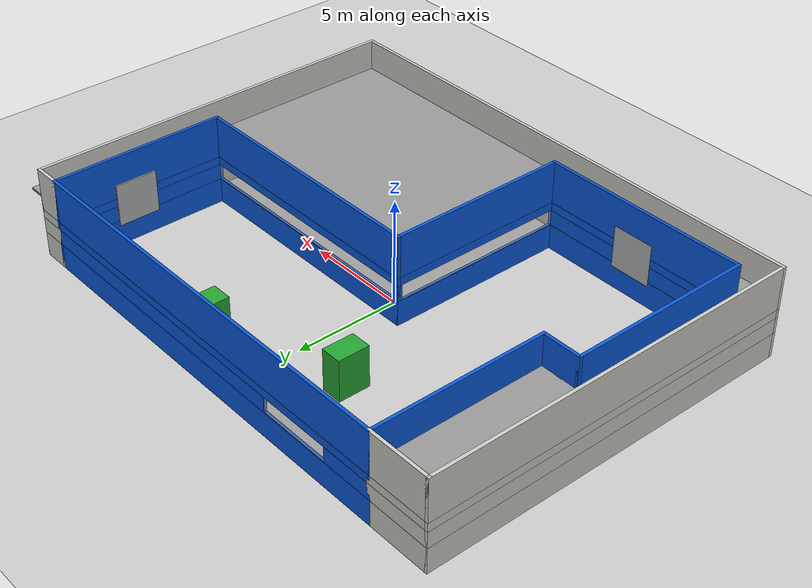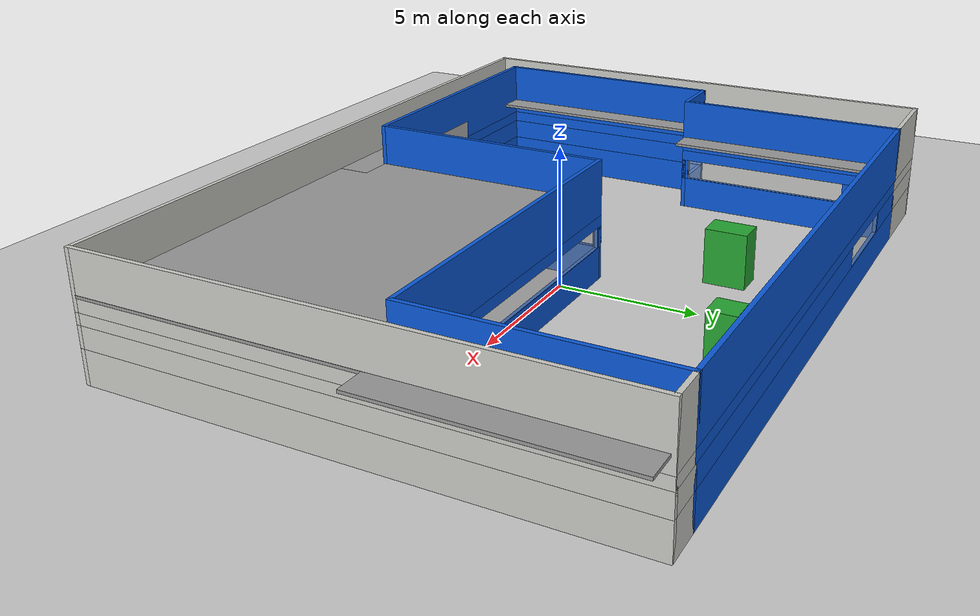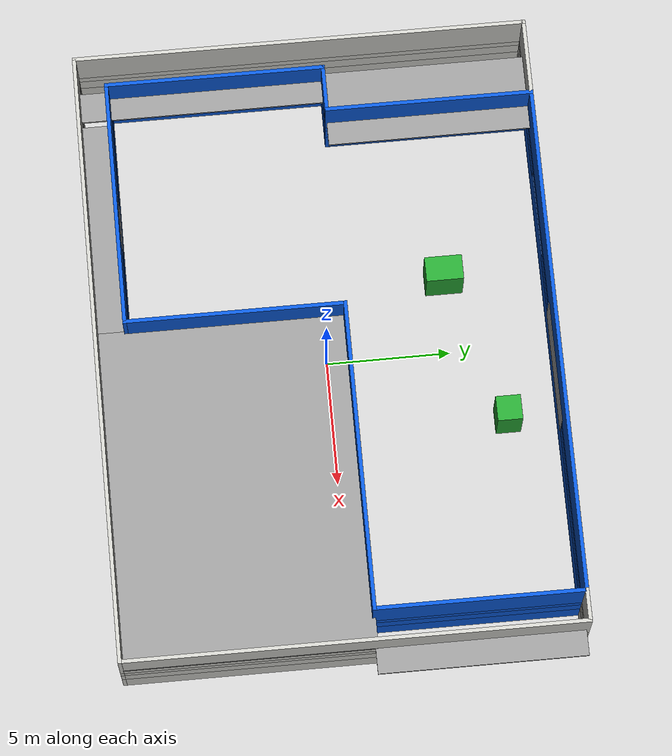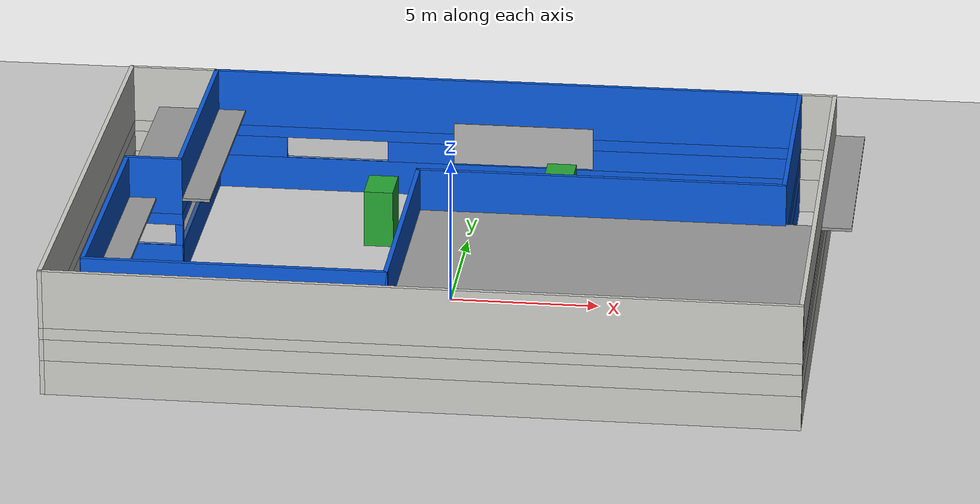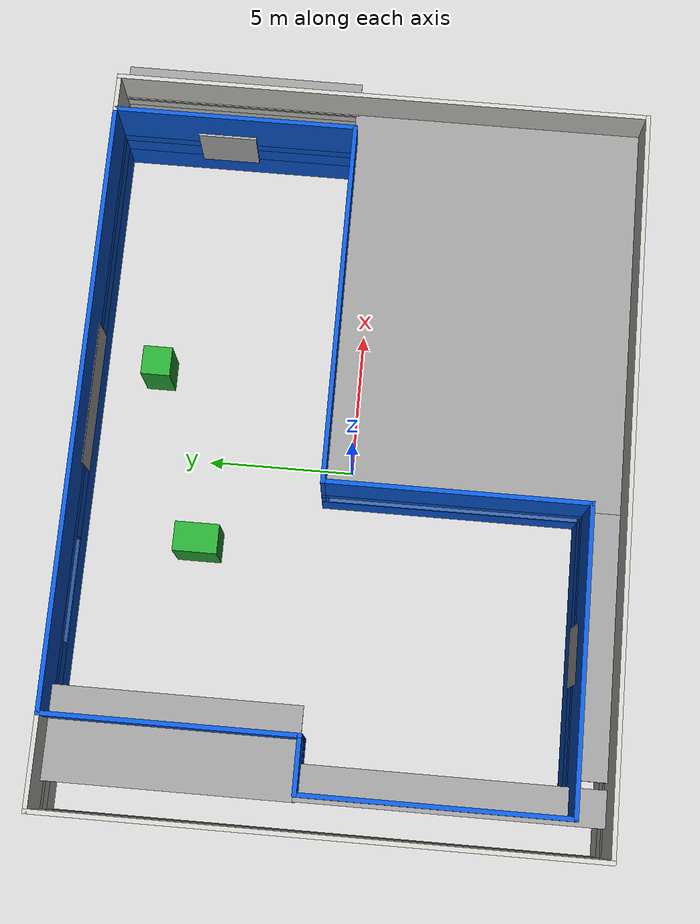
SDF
<sdf version="1.6">
 <world name="default">
  <light name="sun" type="directional">
   <pose>0 0 10 0 -0 0</pose>
   <diffuse>0.8 0.8 0.8 1</diffuse>
   <specular>0.1 0.1 0.1 1</specular>
   <attenuation>
    <range>1000</range>
    <constant>0.9</constant>
    <linear>0.01</linear>
    <quadratic>0.001</quadratic>
   </attenuation>
   <direction>-0.5 0.5 -1</direction>
  </light>
  <model name="ground_plane">
   <static>1</static>
   <link name="link">
    <collision name="collision">
     <geometry><plane><normal>0 0 1</normal><size>100 100</size></plane></geometry>
     <surface><friction><ode><mu>100</mu><mu2>50</mu2></ode></friction></surface>
    </collision>
    <visual name="visual">
     <cast_shadows>0</cast_shadows>
     <geometry><plane><normal>0 0 1</normal><size>100 100</size></plane></geometry>
     <material>
      <script><uri>file://media/materials/scripts/gazebo.material</uri><name>Gazebo/Grey</name></script>
     </material>
    </visual>
   </link>
  </model>
  <gravity>0 0 -9.8</gravity>
  <magnetic_field>6e-06 2.3e-05 -4.2e-05</magnetic_field>
  <atmosphere type="adiabatic"/>
  <physics name="default_physics" default="0" type="ode">
   <max_step_size>0.001</max_step_size>
   <real_time_factor>1</real_time_factor>
   <real_time_update_rate>1000</real_time_update_rate>
   <ode>
    <solver>
     <thread_position_correction>1</thread_position_correction>
     <island_threads>500</island_threads>
    </solver>
   </ode>
  </physics>
  <scene><ambient>0.4 0.4 0.4 1</ambient><background>0.7 0.7 0.7 1</background><shadows>0</shadows></scene>
  <spherical_coordinates>
   <surface_model>EARTH_WGS84</surface_model>
   <latitude_deg>0</latitude_deg>
   <longitude_deg>0</longitude_deg>
   <elevation>0</elevation>
   <heading_deg>0</heading_deg>
  </spherical_coordinates>
  <model name="FAV5">
   <link name="Wall_138">
    <collision name="Wall_138_Collision">
     <geometry><box><size>12.45 0.15 1.2</size></box></geometry>
     <pose>0 0 0.6 0 -0 0</pose>
    </collision>
    <visual name="Wall_138_Visual">
     <pose>0 0 0.6 0 -0 0</pose>
     <geometry><box><size>12.45 0.15 1.2</size></box></geometry>
     <material>
      <script><uri>file://media/materials/scripts/gazebo.material</uri><name>Gazebo/Grey</name></script>
      <ambient>0.0392157 0.352941 0.854902 1</ambient>
     </material>
     <meta><layer>0</layer></meta>
    </visual>
    <pose>4.95 0.85 0 0 -0 0</pose>
   </link>
   <link name="Wall_140">
    <collision name="Wall_140_Collision">
     <geometry><box><size>8.35 0.15 1.2</size></box></geometry>
     <pose>0 0 0.6 0 -0 0</pose>
    </collision>
    <visual name="Wall_140_Visual">
     <pose>0 0 0.6 0 -0 0</pose>
     <geometry><box><size>8.35 0.15 1.2</size></box></geometry>
     <material>
      <script><uri>file://media/materials/scripts/gazebo.material</uri><name>Gazebo/Grey</name></script>
      <ambient>0.0392157 0.352941 0.854902 1</ambient>
     </material>
     <meta><layer>0</layer></meta>
    </visual>
    <pose>11.1 4.95 0 0 -0 1.5708</pose>
   </link>
   <link name="Wall_141">
    <collision name="Wall_141_Collision">
     <geometry><box><size>20.55 0.15 1.2</size></box></geometry>
     <pose>0 0 0.6 0 -0 0</pose>
    </collision>
    <visual name="Wall_141_Visual">
     <pose>0 0 0.6 0 -0 0</pose>
     <geometry><box><size>20.55 0.15 1.2</size></box></geometry>
     <material>
      <script><uri>file://media/materials/scripts/gazebo.material</uri><name>Gazebo/Grey</name></script>
      <ambient>0.0392157 0.352941 0.854902 1</ambient>
     </material>
     <meta><layer>0</layer></meta>
    </visual>
    <pose>0.9 9.05 0 0 -0 3.14159</pose>
   </link>
   <link name="Wall_142">
    <collision name="Wall_142_Collision">
     <geometry><box><size>8.35 0.15 1.2</size></box></geometry>
     <pose>0 0 0.6 0 -0 0</pose>
    </collision>
    <visual name="Wall_142_Visual">
     <pose>0 0 0.6 0 -0 0</pose>
     <geometry><box><size>8.35 0.15 1.2</size></box></geometry>
     <material>
      <script><uri>file://media/materials/scripts/gazebo.material</uri><name>Gazebo/Grey</name></script>
      <ambient>0.0392157 0.352941 0.854902 1</ambient>
     </material>
     <meta><layer>0</layer></meta>
    </visual>
    <pose>-9.3 4.95 0 0 -0 -1.5708</pose>
   </link>
   <link name="Wall_143">
    <collision name="Wall_143_Collision">
     <geometry><box><size>1.95 0.15 1.2</size></box></geometry>
     <pose>0 0 0.6 0 -0 0</pose>
    </collision>
    <visual name="Wall_143_Visual">
     <pose>0 0 0.6 0 -0 0</pose>
     <geometry><box><size>1.95 0.15 1.2</size></box></geometry>
     <material>
      <script><uri>file://media/materials/scripts/gazebo.material</uri><name>Gazebo/Grey</name></script>
      <ambient>0.0392157 0.352941 0.854902 1</ambient>
     </material>
     <meta><layer>0</layer></meta>
    </visual>
    <pose>-10.2 0.85 0 0 -0 3.14159</pose>
   </link>
   <link name="Wall_144">
    <collision name="Wall_144_Collision">
     <geometry><box><size>8.85057 0.15 1.2</size></box></geometry>
     <pose>0 0 0.6 0 -0 0</pose>
    </collision>
    <visual name="Wall_144_Visual">
     <pose>0 0 0.6 0 -0 0</pose>
     <geometry><box><size>8.85057 0.15 1.2</size></box></geometry>
     <material>
      <script><uri>file://media/materials/scripts/gazebo.material</uri><name>Gazebo/Grey</name></script>
      <ambient>0.0392157 0.352941 0.854902 1</ambient>
     </material>
     <meta><layer>0</layer></meta>
    </visual>
    <pose>-11.1 -3.5 0 0 -0 -1.5708</pose>
   </link>
   <link name="Wall_145">
    <collision name="Wall_145_Collision">
     <geometry><box><size>10.05 0.15 1.2</size></box></geometry>
     <pose>0 0 0.6 0 -0 0</pose>
    </collision>
    <visual name="Wall_145_Visual">
     <pose>0 0 0.6 0 -0 0</pose>
     <geometry><box><size>10.05 0.15 1.2</size></box></geometry>
     <material>
      <script><uri>file://media/materials/scripts/gazebo.material</uri><name>Gazebo/Grey</name></script>
      <ambient>0.0392157 0.352941 0.854902 1</ambient>
     </material>
     <meta><layer>0</layer></meta>
    </visual>
    <pose>-6.15 -7.85 0 0 -0 0</pose>
   </link>
   <link name="Wall_146">
    <collision name="Wall_146_Collision">
     <geometry><box><size>8.85 0.15 1.2</size></box></geometry>
     <pose>0 0 0.6 0 -0 0</pose>
    </collision>
    <visual name="Wall_146_Visual">
     <pose>0 0 0.6 0 -0 0</pose>
     <geometry><box><size>8.85 0.15 1.2</size></box></geometry>
     <material>
      <script><uri>file://media/materials/scripts/gazebo.material</uri><name>Gazebo/Grey</name></script>
      <ambient>0.0392157 0.352941 0.854902 1</ambient>
     </material>
     <meta><layer>0</layer></meta>
    </visual>
    <pose>-1.2 -3.5 0 0 -0 1.5708</pose>
   </link>
   <link name="Wall_148">
    <collision name="Wall_148_Collision">
     <geometry><box><size>1.35 0.15 1.2</size></box></geometry>
     <pose>0 0 0.6 0 -0 0</pose>
    </collision>
    <visual name="Wall_148_Visual">
     <pose>0 0 0.6 0 -0 0</pose>
     <geometry><box><size>1.35 0.15 1.2</size></box></geometry>
     <material>
      <script><uri>file://media/materials/scripts/gazebo.material</uri><name>Gazebo/CeilingTiled</name></script>
      <ambient>1 1 1 1</ambient>
     </material>
     <meta><layer>0</layer></meta>
    </visual>
    <pose>11.7 9.05 0 0 -0 0</pose>
   </link>
   <link name="Wall_149">
    <collision name="Wall_149_Collision">
     <geometry><box><size>18.25 0.15 1.2</size></box></geometry>
     <pose>0 0 0.6 0 -0 0</pose>
    </collision>
    <visual name="Wall_149_Visual">
     <pose>0 0 0.6 0 -0 0</pose>
     <geometry><box><size>18.25 0.15 1.2</size></box></geometry>
     <material>
      <script><uri>file://media/materials/scripts/gazebo.material</uri><name>Gazebo/CeilingTiled</name></script>
      <ambient>1 1 1 1</ambient>
     </material>
     <meta><layer>0</layer></meta>
    </visual>
    <pose>12.3 0 0 0 -0 -1.5708</pose>
   </link>
   <link name="Wall_151">
    <collision name="Wall_151_Collision">
     <geometry><box><size>18.25 0.15 1.2</size></box></geometry>
     <pose>0 0 0.6 0 -0 0</pose>
    </collision>
    <visual name="Wall_151_Visual">
     <pose>0 0 0.6 0 -0 0</pose>
     <geometry><box><size>18.25 0.15 1.2</size></box></geometry>
     <material>
      <script><uri>file://media/materials/scripts/gazebo.material</uri><name>Gazebo/CeilingTiled</name></script>
      <ambient>1 1 1 1</ambient>
     </material>
     <meta><layer>0</layer></meta>
    </visual>
    <pose>-12.3 0 0 0 -0 1.5708</pose>
   </link>
   <link name="Wall_152">
    <collision name="Wall_152_Collision">
     <geometry><box><size>3.15 0.15 1.2</size></box></geometry>
     <pose>0 0 0.6 0 -0 0</pose>
    </collision>
    <visual name="Wall_152_Visual">
     <pose>0 0 0.6 0 -0 0</pose>
     <geometry><box><size>3.15 0.15 1.2</size></box></geometry>
     <material>
      <script><uri>file://media/materials/scripts/gazebo.material</uri><name>Gazebo/CeilingTiled</name></script>
      <ambient>1 1 1 1</ambient>
     </material>
     <meta><layer>0</layer></meta>
    </visual>
    <pose>-10.8 9.05 0 0 -0 0</pose>
   </link>
   <link name="Wall_154">
    <collision name="Wall_154_Collision">
     <geometry><box><size>24.75 0.15 1.2</size></box></geometry>
     <pose>0 0 0.6 0 -0 0</pose>
    </collision>
    <visual name="Wall_154_Visual">
     <pose>0 0 0.6 0 -0 0</pose>
     <geometry><box><size>24.75 0.15 1.2</size></box></geometry>
     <material>
      <script><uri>file://media/materials/scripts/gazebo.material</uri><name>Gazebo/CeilingTiled</name></script>
      <ambient>1 1 1 1</ambient>
     </material>
     <meta><layer>0</layer></meta>
    </visual>
    <pose>0 -9.05 0 0 -0 3.14159</pose>
   </link>
   <link name="Wall_157">
    <collision name="Wall_157_Collision">
     <geometry><box><size>8.35 0.15 0.75</size></box></geometry>
     <pose>0 0 0.375 0 -0 0</pose>
    </collision>
    <visual name="Wall_157_Visual">
     <pose>0 0 0.375 0 -0 0</pose>
     <geometry><box><size>8.35 0.15 0.75</size></box></geometry>
     <material>
      <script><uri>file://media/materials/scripts/gazebo.material</uri><name>Gazebo/Grey</name></script>
      <ambient>0.0392157 0.352941 0.854902 1</ambient>
     </material>
     <meta><layer>1</layer></meta>
    </visual>
    <pose>11.1 4.95 1.2 0 -0 1.5708</pose>
   </link>
   <link name="Wall_161">
    <collision name="Wall_161_Collision">
     <geometry><box><size>8.85 0.15 0.75</size></box></geometry>
     <pose>0 0 0.375 0 -0 0</pose>
    </collision>
    <visual name="Wall_161_Visual">
     <pose>0 0 0.375 0 -0 0</pose>
     <geometry><box><size>8.85 0.15 0.75</size></box></geometry>
     <material>
      <script><uri>file://media/materials/scripts/gazebo.material</uri><name>Gazebo/Grey</name></script>
      <ambient>0.0392157 0.352941 0.854902 1</ambient>
     </material>
     <meta><layer>1</layer></meta>
    </visual>
    <pose>-11.1 -3.5 1.2 0 -0 -1.5708</pose>
   </link>
   <link name="Wall_162">
    <collision name="Wall_162_Collision">
     <geometry><box><size>10.05 0.15 0.75</size></box></geometry>
     <pose>0 0 0.375 0 -0 0</pose>
    </collision>
    <visual name="Wall_162_Visual">
     <pose>0 0 0.375 0 -0 0</pose>
     <geometry><box><size>10.05 0.15 0.75</size></box></geometry>
     <material>
      <script><uri>file://media/materials/scripts/gazebo.material</uri><name>Gazebo/Grey</name></script>
      <ambient>0.0392157 0.352941 0.854902 1</ambient>
     </material>
     <meta><layer>1</layer></meta>
    </visual>
    <pose>-6.15 -7.85 1.2 0 -0 0</pose>
   </link>
   <link name="Wall_164">
    <collision name="Wall_164_Collision">
     <geometry><box><size>1.35 0.15 0.75</size></box></geometry>
     <pose>0 0 0.375 0 -0 0</pose>
    </collision>
    <visual name="Wall_164_Visual">
     <pose>0 0 0.375 0 -0 0</pose>
     <geometry><box><size>1.35 0.15 0.75</size></box></geometry>
     <material>
      <script><uri>file://media/materials/scripts/gazebo.material</uri><name>Gazebo/CeilingTiled</name></script>
      <ambient>1 1 1 1</ambient>
     </material>
     <meta><layer>1</layer></meta>
    </visual>
    <pose>11.7 9.05 1.2 0 -0 0</pose>
   </link>
   <link name="Wall_165">
    <collision name="Wall_165_Collision">
     <geometry><box><size>18.25 0.15 0.75</size></box></geometry>
     <pose>0 0 0.375 0 -0 0</pose>
    </collision>
    <visual name="Wall_165_Visual">
     <pose>0 0 0.375 0 -0 0</pose>
     <geometry><box><size>18.25 0.15 0.75</size></box></geometry>
     <material>
      <script><uri>file://media/materials/scripts/gazebo.material</uri><name>Gazebo/CeilingTiled</name></script>
      <ambient>1 1 1 1</ambient>
     </material>
     <meta><layer>1</layer></meta>
    </visual>
    <pose>12.3 0 1.2 0 -0 -1.5708</pose>
   </link>
   <link name="Wall_166">
    <collision name="Wall_166_Collision">
     <geometry><box><size>18.25 0.15 0.75</size></box></geometry>
     <pose>0 0 0.375 0 -0 0</pose>
    </collision>
    <visual name="Wall_166_Visual">
     <pose>0 0 0.375 0 -0 0</pose>
     <geometry><box><size>18.25 0.15 0.75</size></box></geometry>
     <material>
      <script><uri>file://media/materials/scripts/gazebo.material</uri><name>Gazebo/CeilingTiled</name></script>
      <ambient>1 1 1 1</ambient>
     </material>
     <meta><layer>1</layer></meta>
    </visual>
    <pose>-12.3 0 1.2 0 -0 1.5708</pose>
   </link>
   <link name="Wall_167">
    <collision name="Wall_167_Collision">
     <geometry><box><size>3.15 0.15 0.75</size></box></geometry>
     <pose>0 0 0.375 0 -0 0</pose>
    </collision>
    <visual name="Wall_167_Visual">
     <pose>0 0 0.375 0 -0 0</pose>
     <geometry><box><size>3.15 0.15 0.75</size></box></geometry>
     <material>
      <script><uri>file://media/materials/scripts/gazebo.material</uri><name>Gazebo/CeilingTiled</name></script>
      <ambient>1 1 1 1</ambient>
     </material>
     <meta><layer>1</layer></meta>
    </visual>
    <pose>-10.8 9.05 1.2 0 -0 0</pose>
   </link>
   <link name="Wall_168">
    <collision name="Wall_168_Collision">
     <geometry><box><size>24.75 0.15 0.75</size></box></geometry>
     <pose>0 0 0.375 0 -0 0</pose>
    </collision>
    <visual name="Wall_168_Visual">
     <pose>0 0 0.375 0 -0 0</pose>
     <geometry><box><size>24.75 0.15 0.75</size></box></geometry>
     <material>
      <script><uri>file://media/materials/scripts/gazebo.material</uri><name>Gazebo/CeilingTiled</name></script>
      <ambient>1 1 1 1</ambient>
     </material>
     <meta><layer>1</layer></meta>
    </visual>
    <pose>0 -9.05 1.2 0 -0 3.14159</pose>
   </link>
   <link name="Wall_169">
    <visual name="Wall_169_Visual">
     <pose>0 0 0.375 0 -0 0</pose>
     <geometry><box><size>6.45 0.1 0.75</size></box></geometry>
     <material name="my_material">
      <ambient>0.5 0.5 0.5 1</ambient>
      <diffuse>0.8 0.8 0.8 0.5</diffuse>
      <transparent>true</transparent>
      <opacity>0.2</opacity>
     </material>
     <meta><layer>1</layer></meta>
    </visual>
    <pose>-9.3 4.125 1.2 0 -0 1.5708</pose>
   </link>
   <gazebo reference="Wall_169">
    <material>Gazebo/Glass</material>
    <sensor name="laser_transparency">
     <transmissivity>0.85</transmissivity>
     <reflectivity>0.15</reflectivity>
    </sensor>
   </gazebo>
   <link name="Wall_170">
    <collision name="Wall_170_Collision">
     <geometry><box><size>1.9 0.15 0.75</size></box></geometry>
     <pose>0 0 0.375 0 -0 0</pose>
    </collision>
    <visual name="Wall_170_Visual">
     <pose>0 0 0.375 0 -0 0</pose>
     <geometry><box><size>1.9 0.15 0.75</size></box></geometry>
     <material>
      <script><uri>file://media/materials/scripts/gazebo.material</uri><name>Gazebo/Grey</name></script>
      <ambient>0.0392157 0.352941 0.854902 1</ambient>
     </material>
     <meta><layer>1</layer></meta>
    </visual>
    <pose>-9.3 8.175 1.2 0 -0 1.5708</pose>
   </link>
   <link name="Wall_172">
    <collision name="Wall_172_Collision">
     <geometry><box><size>0.25 0.15 0.75</size></box></geometry>
     <pose>0 0 0.375 0 -0 0</pose>
    </collision>
    <visual name="Wall_172_Visual">
     <pose>0 0 0.375 0 -0 0</pose>
     <geometry><box><size>0.25 0.15 0.75</size></box></geometry>
     <material>
      <script><uri>file://media/materials/scripts/gazebo.material</uri><name>Gazebo/Grey</name></script>
      <ambient>0.0392157 0.352941 0.854902 1</ambient>
     </material>
     <meta><layer>1</layer></meta>
    </visual>
    <pose>-9.3 0.9 1.2 0 -0 -1.5708</pose>
   </link>
   <link name="Wall_175">
    <collision name="Wall_175_Collision">
     <geometry><box><size>0.25 0.15 0.75</size></box></geometry>
     <pose>0 0 0.375 0 -0 0</pose>
    </collision>
    <visual name="Wall_175_Visual">
     <pose>0 0 0.375 0 -0 0</pose>
     <geometry><box><size>0.25 0.15 0.75</size></box></geometry>
     <material>
      <script><uri>file://media/materials/scripts/gazebo.material</uri><name>Gazebo/Grey</name></script>
      <ambient>0.0392157 0.352941 0.854902 1</ambient>
     </material>
     <meta><layer>1</layer></meta>
    </visual>
    <pose>-9.35 0.85 1.2 0 -0 0</pose>
   </link>
   <link name="Wall_177">
    <visual name="Wall_177_Visual">
     <pose>0 0 0.375 0 -0 0</pose>
     <geometry><box><size>1.8 0.1 0.75</size></box></geometry>
     <material name="my_material">
      <ambient>0.5 0.5 0.5 1</ambient>
      <diffuse>0.8 0.8 0.8 0.5</diffuse>
      <transparent>true</transparent>
      <opacity>0.2</opacity>
     </material>
     <meta><layer>1</layer></meta>
    </visual>
    <pose>-10.25 0.85 1.2 0 -0 0</pose>
   </link>
   <gazebo reference="Wall_177">
    <material>Gazebo/Glass</material>
    <sensor name="laser_transparency">
     <transmissivity>0.85</transmissivity>
     <reflectivity>0.15</reflectivity>
    </sensor>
   </gazebo>
   <link name="Wall_179">
    <collision name="Wall_179_Collision">
     <geometry><box><size>0.25 0.15 0.75</size></box></geometry>
     <pose>0 0 0.375 0 -0 0</pose>
    </collision>
    <visual name="Wall_179_Visual">
     <pose>0 0 0.375 0 -0 0</pose>
     <geometry><box><size>0.25 0.15 0.75</size></box></geometry>
     <material>
      <script><uri>file://media/materials/scripts/gazebo.material</uri><name>Gazebo/Grey</name></script>
      <ambient>0.0392157 0.352941 0.854902 1</ambient>
     </material>
     <meta><layer>1</layer></meta>
    </visual>
    <pose>-1.2 0.8 1.2 0 -0 -1.5708</pose>
   </link>
   <link name="Wall_181">
    <visual name="Wall_181_Visual">
     <pose>0 0 0.375 0 -0 0</pose>
     <geometry><box><size>8.7 0.1 0.75</size></box></geometry>
     <material name="my_material">
      <ambient>0.5 0.5 0.5 1</ambient>
      <diffuse>0.8 0.8 0.8 0.5</diffuse>
      <transparent>true</transparent>
      <opacity>0.2</opacity>
     </material>
     <meta><layer>1</layer></meta>
    </visual>
    <pose>-1.2 -3.55 1.2 0 -0 1.5708</pose>
   </link>
   <gazebo reference="Wall_181">
    <material>Gazebo/Glass</material>
    <sensor name="laser_transparency">
     <transmissivity>0.85</transmissivity>
     <reflectivity>0.15</reflectivity>
    </sensor>
   </gazebo>
   <link name="Wall_185">
    <collision name="Wall_185_Collision">
     <geometry><box><size>0.25 0.15 0.75</size></box></geometry>
     <pose>0 0 0.375 0 -0 0</pose>
    </collision>
    <visual name="Wall_185_Visual">
     <pose>0 0 0.375 0 -0 0</pose>
     <geometry><box><size>0.25 0.15 0.75</size></box></geometry>
     <material>
      <script><uri>file://media/materials/scripts/gazebo.material</uri><name>Gazebo/Grey</name></script>
      <ambient>0.0392157 0.352941 0.854902 1</ambient>
     </material>
     <meta><layer>1</layer></meta>
    </visual>
    <pose>-1.15 0.85 1.2 0 -0 3.14159</pose>
   </link>
   <link name="Wall_187">
    <visual name="Wall_187_Visual">
     <pose>0 0 0.375 0 -0 0</pose>
     <geometry><box><size>12.3 0.1 0.75</size></box></geometry>
     <material name="my_material">
      <ambient>0.5 0.5 0.5 1</ambient>
      <diffuse>0.8 0.8 0.8 0.5</diffuse>
      <transparent>true</transparent>
      <opacity>0.2</opacity>
     </material>
     <meta><layer>1</layer></meta>
    </visual>
    <pose>5 0.85 1.2 0 -0 0</pose>
   </link>
   <gazebo reference="Wall_187">
    <material>Gazebo/Glass</material>
    <sensor name="laser_transparency">
     <transmissivity>0.85</transmissivity>
     <reflectivity>0.15</reflectivity>
    </sensor>
   </gazebo>
   <link name="Wall_189">
    <collision name="Wall_189_Collision">
     <geometry><box><size>2.55 0.15 0.75</size></box></geometry>
     <pose>0 0 0.375 0 -0 0</pose>
    </collision>
    <visual name="Wall_189_Visual">
     <pose>0 0 0.375 0 -0 0</pose>
     <geometry><box><size>2.55 0.15 0.75</size></box></geometry>
     <material>
      <script><uri>file://media/materials/scripts/gazebo.material</uri><name>Gazebo/Grey</name></script>
      <ambient>0.0392157 0.352941 0.854902 1</ambient>
     </material>
     <meta><layer>1</layer></meta>
    </visual>
    <pose>-8.1 9.05 1.2 0 -0 0</pose>
   </link>
   <link name="Wall_190">
    <visual name="Wall_190_Visual">
     <pose>0 0 0.375 0 -0 0</pose>
     <geometry><box><size>3.8 0.1 0.75</size></box></geometry>
     <material name="my_material">
      <ambient>0.5 0.5 0.5 1</ambient>
      <diffuse>0.8 0.8 0.8 0.5</diffuse>
      <transparent>true</transparent>
      <opacity>0.2</opacity>
     </material>
     <meta><layer>1</layer></meta>
    </visual>
    <pose>-5.05 9.05 1.2 0 -0 0</pose>
   </link>
   <gazebo reference="Wall_190">
    <material>Gazebo/Glass</material>
    <sensor name="laser_transparency">
     <transmissivity>0.85</transmissivity>
     <reflectivity>0.15</reflectivity>
    </sensor>
   </gazebo>
   <link name="Wall_191">
    <collision name="Wall_191_Collision">
     <geometry><box><size>14.35 0.15 0.75</size></box></geometry>
     <pose>0 0 0.375 0 -0 0</pose>
    </collision>
    <visual name="Wall_191_Visual">
     <pose>0 0 0.375 0 -0 0</pose>
     <geometry><box><size>14.35 0.15 0.75</size></box></geometry>
     <material>
      <script><uri>file://media/materials/scripts/gazebo.material</uri><name>Gazebo/Grey</name></script>
      <ambient>0.0392157 0.352941 0.854902 1</ambient>
     </material>
     <meta><layer>1</layer></meta>
    </visual>
    <pose>3.9 9.05 1.2 0 -0 0</pose>
   </link>
   <link name="Wall_193">
    <collision name="Wall_193_Collision">
     <geometry><box><size>8.35 0.15 0.4</size></box></geometry>
     <pose>0 0 0.2 0 -0 0</pose>
    </collision>
    <visual name="Wall_193_Visual">
     <pose>0 0 0.2 0 -0 0</pose>
     <geometry><box><size>8.35 0.15 0.4</size></box></geometry>
     <material>
      <script><uri>file://media/materials/scripts/gazebo.material</uri><name>Gazebo/Grey</name></script>
      <ambient>0.0392157 0.352941 0.854902 1</ambient>
     </material>
     <meta><layer>2</layer></meta>
    </visual>
    <pose>11.1 4.95 1.95 0 -0 1.5708</pose>
   </link>
   <link name="Wall_194">
    <collision name="Wall_194_Collision">
     <geometry><box><size>8.85 0.15 0.4</size></box></geometry>
     <pose>0 0 0.2 0 -0 0</pose>
    </collision>
    <visual name="Wall_194_Visual">
     <pose>0 0 0.2 0 -0 0</pose>
     <geometry><box><size>8.85 0.15 0.4</size></box></geometry>
     <material>
      <script><uri>file://media/materials/scripts/gazebo.material</uri><name>Gazebo/Grey</name></script>
      <ambient>0.0392157 0.352941 0.854902 1</ambient>
     </material>
     <meta><layer>2</layer></meta>
    </visual>
    <pose>-11.1 -3.5 1.95 0 -0 -1.5708</pose>
   </link>
   <link name="Wall_195">
    <collision name="Wall_195_Collision">
     <geometry><box><size>10.05 0.15 0.4</size></box></geometry>
     <pose>0 0 0.2 0 -0 0</pose>
    </collision>
    <visual name="Wall_195_Visual">
     <pose>0 0 0.2 0 -0 0</pose>
     <geometry><box><size>10.05 0.15 0.4</size></box></geometry>
     <material>
      <script><uri>file://media/materials/scripts/gazebo.material</uri><name>Gazebo/Grey</name></script>
      <ambient>0.0392157 0.352941 0.854902 1</ambient>
     </material>
     <meta><layer>2</layer></meta>
    </visual>
    <pose>-6.15 -7.85 1.95 0 -0 0</pose>
   </link>
   <link name="Wall_196">
    <collision name="Wall_196_Collision">
     <geometry><box><size>1.35 0.15 0.4</size></box></geometry>
     <pose>0 0 0.2 0 -0 0</pose>
    </collision>
    <visual name="Wall_196_Visual">
     <pose>0 0 0.2 0 -0 0</pose>
     <geometry><box><size>1.35 0.15 0.4</size></box></geometry>
     <material>
      <script><uri>file://media/materials/scripts/gazebo.material</uri><name>Gazebo/CeilingTiled</name></script>
      <ambient>1 1 1 1</ambient>
     </material>
     <meta><layer>2</layer></meta>
    </visual>
    <pose>11.7 9.05 1.95 0 -0 0</pose>
   </link>
   <link name="Wall_197">
    <collision name="Wall_197_Collision">
     <geometry><box><size>18.25 0.15 0.4</size></box></geometry>
     <pose>0 0 0.2 0 -0 0</pose>
    </collision>
    <visual name="Wall_197_Visual">
     <pose>0 0 0.2 0 -0 0</pose>
     <geometry><box><size>18.25 0.15 0.4</size></box></geometry>
     <material>
      <script><uri>file://media/materials/scripts/gazebo.material</uri><name>Gazebo/CeilingTiled</name></script>
      <ambient>1 1 1 1</ambient>
     </material>
     <meta><layer>2</layer></meta>
    </visual>
    <pose>12.3 0 1.95 0 -0 -1.5708</pose>
   </link>
   <link name="Wall_198">
    <collision name="Wall_198_Collision">
     <geometry><box><size>18.25 0.15 0.4</size></box></geometry>
     <pose>0 0 0.2 0 -0 0</pose>
    </collision>
    <visual name="Wall_198_Visual">
     <pose>0 0 0.2 0 -0 0</pose>
     <geometry><box><size>18.25 0.15 0.4</size></box></geometry>
     <material>
      <script><uri>file://media/materials/scripts/gazebo.material</uri><name>Gazebo/CeilingTiled</name></script>
      <ambient>1 1 1 1</ambient>
     </material>
     <meta><layer>2</layer></meta>
    </visual>
    <pose>-12.3 0 1.95 0 -0 1.5708</pose>
   </link>
   <link name="Wall_199">
    <collision name="Wall_199_Collision">
     <geometry><box><size>3.15 0.15 0.4</size></box></geometry>
     <pose>0 0 0.2 0 -0 0</pose>
    </collision>
    <visual name="Wall_199_Visual">
     <pose>0 0 0.2 0 -0 0</pose>
     <geometry><box><size>3.15 0.15 0.4</size></box></geometry>
     <material>
      <script><uri>file://media/materials/scripts/gazebo.material</uri><name>Gazebo/CeilingTiled</name></script>
      <ambient>1 1 1 1</ambient>
     </material>
     <meta><layer>2</layer></meta>
    </visual>
    <pose>-10.8 9.05 1.95 0 -0 0</pose>
   </link>
   <link name="Wall_200">
    <collision name="Wall_200_Collision">
     <geometry><box><size>24.75 0.15 0.4</size></box></geometry>
     <pose>0 0 0.2 0 -0 0</pose>
    </collision>
    <visual name="Wall_200_Visual">
     <pose>0 0 0.2 0 -0 0</pose>
     <geometry><box><size>24.75 0.15 0.4</size></box></geometry>
     <material>
      <script><uri>file://media/materials/scripts/gazebo.material</uri><name>Gazebo/CeilingTiled</name></script>
      <ambient>1 1 1 1</ambient>
     </material>
     <meta><layer>2</layer></meta>
    </visual>
    <pose>0 -9.05 1.95 0 -0 3.14159</pose>
   </link>
   <link name="Wall_202">
    <collision name="Wall_202_Collision">
     <geometry><box><size>8.35 0.15 0.4</size></box></geometry>
     <pose>0 0 0.2 0 -0 0</pose>
    </collision>
    <visual name="Wall_202_Visual">
     <pose>0 0 0.2 0 -0 0</pose>
     <geometry><box><size>8.35 0.15 0.4</size></box></geometry>
     <material>
      <script><uri>file://media/materials/scripts/gazebo.material</uri><name>Gazebo/Grey</name></script>
      <ambient>0.0392157 0.352941 0.854902 1</ambient>
     </material>
     <meta><layer>2</layer></meta>
    </visual>
    <pose>-9.3 4.95 1.95 0 -0 1.5708</pose>
   </link>
   <link name="Wall_213">
    <collision name="Wall_213_Collision">
     <geometry><box><size>20.55 0.15 0.4</size></box></geometry>
     <pose>0 0 0.2 0 -0 0</pose>
    </collision>
    <visual name="Wall_213_Visual">
     <pose>0 0 0.2 0 -0 0</pose>
     <geometry><box><size>20.55 0.15 0.4</size></box></geometry>
     <material>
      <script><uri>file://media/materials/scripts/gazebo.material</uri><name>Gazebo/Grey</name></script>
      <ambient>0.0392157 0.352941 0.854902 1</ambient>
     </material>
     <meta><layer>2</layer></meta>
    </visual>
    <pose>0.9 9.05 1.95 0 -0 0</pose>
   </link>
   <link name="Wall_216">
    <collision name="Wall_216_Collision">
     <geometry><box><size>12.4504 0.15 0.4</size></box></geometry>
     <pose>0 0 0.2 0 -0 0</pose>
    </collision>
    <visual name="Wall_216_Visual">
     <pose>0 0 0.2 0 -0 0</pose>
     <geometry><box><size>12.4504 0.15 0.4</size></box></geometry>
     <material>
      <script><uri>file://media/materials/scripts/gazebo.material</uri><name>Gazebo/Grey</name></script>
      <ambient>0.0392157 0.352941 0.854902 1</ambient>
     </material>
     <meta><layer>2</layer></meta>
    </visual>
    <pose>4.95 0.85 1.95 0 -0 3.14159</pose>
   </link>
   <link name="Wall_218">
    <collision name="Wall_218_Collision">
     <geometry><box><size>8.85 0.15 0.4</size></box></geometry>
     <pose>0 0 0.2 0 -0 0</pose>
    </collision>
    <visual name="Wall_218_Visual">
     <pose>0 0 0.2 0 -0 0</pose>
     <geometry><box><size>8.85 0.15 0.4</size></box></geometry>
     <material>
      <script><uri>file://media/materials/scripts/gazebo.material</uri><name>Gazebo/Grey</name></script>
      <ambient>0.0392157 0.352941 0.854902 1</ambient>
     </material>
     <meta><layer>2</layer></meta>
    </visual>
    <pose>-1.2 -3.5 1.95 0 -0 -1.5708</pose>
   </link>
   <link name="Wall_220">
    <collision name="Wall_220_Collision">
     <geometry><box><size>1.95 0.15 0.4</size></box></geometry>
     <pose>0 0 0.2 0 -0 0</pose>
    </collision>
    <visual name="Wall_220_Visual">
     <pose>0 0 0.2 0 -0 0</pose>
     <geometry><box><size>1.95 0.15 0.4</size></box></geometry>
     <material>
      <script><uri>file://media/materials/scripts/gazebo.material</uri><name>Gazebo/Grey</name></script>
      <ambient>0.0392157 0.352941 0.854902 1</ambient>
     </material>
     <meta><layer>2</layer></meta>
    </visual>
    <pose>-10.2 0.85 1.95 0 -0 0</pose>
   </link>
   <link name="Wall_222">
    <collision name="Wall_222_Collision">
     <geometry><box><size>8.35 0.15 2</size></box></geometry>
     <pose>0 0 1 0 -0 0</pose>
    </collision>
    <visual name="Wall_222_Visual">
     <pose>0 0 1 0 -0 0</pose>
     <geometry><box><size>8.35 0.15 2</size></box></geometry>
     <material>
      <script><uri>file://media/materials/scripts/gazebo.material</uri><name>Gazebo/Grey</name></script>
      <ambient>0.0392157 0.352941 0.854902 1</ambient>
     </material>
     <meta><layer>3</layer></meta>
    </visual>
    <pose>11.1 4.95 2.35 0 -0 1.5708</pose>
   </link>
   <link name="Wall_223">
    <collision name="Wall_223_Collision">
     <geometry><box><size>8.85 0.15 2</size></box></geometry>
     <pose>0 0 1 0 -0 0</pose>
    </collision>
    <visual name="Wall_223_Visual">
     <pose>0 0 1 0 -0 0</pose>
     <geometry><box><size>8.85 0.15 2</size></box></geometry>
     <material>
      <script><uri>file://media/materials/scripts/gazebo.material</uri><name>Gazebo/Grey</name></script>
      <ambient>0.0392157 0.352941 0.854902 1</ambient>
     </material>
     <meta><layer>3</layer></meta>
    </visual>
    <pose>-11.1 -3.5 2.35 0 -0 -1.5708</pose>
   </link>
   <link name="Wall_224">
    <collision name="Wall_224_Collision">
     <geometry><box><size>10.05 0.15 2</size></box></geometry>
     <pose>0 0 1 0 -0 0</pose>
    </collision>
    <visual name="Wall_224_Visual">
     <pose>0 0 1 0 -0 0</pose>
     <geometry><box><size>10.05 0.15 2</size></box></geometry>
     <material>
      <script><uri>file://media/materials/scripts/gazebo.material</uri><name>Gazebo/Grey</name></script>
      <ambient>0.0392157 0.352941 0.854902 1</ambient>
     </material>
     <meta><layer>3</layer></meta>
    </visual>
    <pose>-6.15 -7.85 2.35 0 -0 0</pose>
   </link>
   <link name="Wall_225">
    <collision name="Wall_225_Collision">
     <geometry><box><size>1.35 0.15 2</size></box></geometry>
     <pose>0 0 1 0 -0 0</pose>
    </collision>
    <visual name="Wall_225_Visual">
     <pose>0 0 1 0 -0 0</pose>
     <geometry><box><size>1.35 0.15 2</size></box></geometry>
     <material>
      <script><uri>file://media/materials/scripts/gazebo.material</uri><name>Gazebo/CeilingTiled</name></script>
      <ambient>1 1 1 1</ambient>
     </material>
     <meta><layer>3</layer></meta>
    </visual>
    <pose>11.7 9.05 2.35 0 -0 0</pose>
   </link>
   <link name="Wall_226">
    <collision name="Wall_226_Collision">
     <geometry><box><size>18.25 0.15 2</size></box></geometry>
     <pose>0 0 1 0 -0 0</pose>
    </collision>
    <visual name="Wall_226_Visual">
     <pose>0 0 1 0 -0 0</pose>
     <geometry><box><size>18.25 0.15 2</size></box></geometry>
     <material>
      <script><uri>file://media/materials/scripts/gazebo.material</uri><name>Gazebo/CeilingTiled</name></script>
      <ambient>1 1 1 1</ambient>
     </material>
     <meta><layer>3</layer></meta>
    </visual>
    <pose>12.3 0 2.35 0 -0 -1.5708</pose>
   </link>
   <link name="Wall_227">
    <collision name="Wall_227_Collision">
     <geometry><box><size>18.25 0.15 2</size></box></geometry>
     <pose>0 0 1 0 -0 0</pose>
    </collision>
    <visual name="Wall_227_Visual">
     <pose>0 0 1 0 -0 0</pose>
     <geometry><box><size>18.25 0.15 2</size></box></geometry>
     <material>
      <script><uri>file://media/materials/scripts/gazebo.material</uri><name>Gazebo/CeilingTiled</name></script>
      <ambient>1 1 1 1</ambient>
     </material>
     <meta><layer>3</layer></meta>
    </visual>
    <pose>-12.3 0 2.35 0 -0 1.5708</pose>
   </link>
   <link name="Wall_228">
    <collision name="Wall_228_Collision">
     <geometry><box><size>3.15 0.15 2</size></box></geometry>
     <pose>0 0 1 0 -0 0</pose>
    </collision>
    <visual name="Wall_228_Visual">
     <pose>0 0 1 0 -0 0</pose>
     <geometry><box><size>3.15 0.15 2</size></box></geometry>
     <material>
      <script><uri>file://media/materials/scripts/gazebo.material</uri><name>Gazebo/CeilingTiled</name></script>
      <ambient>1 1 1 1</ambient>
     </material>
     <meta><layer>3</layer></meta>
    </visual>
    <pose>-10.8 9.05 2.35 0 -0 0</pose>
   </link>
   <link name="Wall_229">
    <collision name="Wall_229_Collision">
     <geometry><box><size>24.75 0.15 2</size></box></geometry>
     <pose>0 0 1 0 -0 0</pose>
    </collision>
    <visual name="Wall_229_Visual">
     <pose>0 0 1 0 -0 0</pose>
     <geometry><box><size>24.75 0.15 2</size></box></geometry>
     <material>
      <script><uri>file://media/materials/scripts/gazebo.material</uri><name>Gazebo/CeilingTiled</name></script>
      <ambient>1 1 1 1</ambient>
     </material>
     <meta><layer>3</layer></meta>
    </visual>
    <pose>0 -9.05 2.35 0 -0 3.14159</pose>
   </link>
   <link name="Wall_230">
    <collision name="Wall_230_Collision">
     <geometry><box><size>8.35 0.15 2</size></box></geometry>
     <pose>0 0 1 0 -0 0</pose>
    </collision>
    <visual name="Wall_230_Visual">
     <pose>0 0 1 0 -0 0</pose>
     <geometry><box><size>8.35 0.15 2</size></box></geometry>
     <material>
      <script><uri>file://media/materials/scripts/gazebo.material</uri><name>Gazebo/Grey</name></script>
      <ambient>0.0392157 0.352941 0.854902 1</ambient>
     </material>
     <meta><layer>3</layer></meta>
    </visual>
    <pose>-9.3 4.95 2.35 0 -0 1.5708</pose>
   </link>
   <link name="Wall_231">
    <collision name="Wall_231_Collision">
     <geometry><box><size>20.55 0.15 2</size></box></geometry>
     <pose>0 0 1 0 -0 0</pose>
    </collision>
    <visual name="Wall_231_Visual">
     <pose>0 0 1 0 -0 0</pose>
     <geometry><box><size>20.55 0.15 2</size></box></geometry>
     <material>
      <script><uri>file://media/materials/scripts/gazebo.material</uri><name>Gazebo/Grey</name></script>
      <ambient>0.0392157 0.352941 0.854902 1</ambient>
     </material>
     <meta><layer>3</layer></meta>
    </visual>
    <pose>0.9 9.05 2.35 0 -0 0</pose>
   </link>
   <link name="Wall_232">
    <collision name="Wall_232_Collision">
     <geometry><box><size>12.45 0.15 2</size></box></geometry>
     <pose>0 0 1 0 -0 0</pose>
    </collision>
    <visual name="Wall_232_Visual">
     <pose>0 0 1 0 -0 0</pose>
     <geometry><box><size>12.45 0.15 2</size></box></geometry>
     <material>
      <script><uri>file://media/materials/scripts/gazebo.material</uri><name>Gazebo/Grey</name></script>
      <ambient>0.0392157 0.352941 0.854902 1</ambient>
     </material>
     <meta><layer>3</layer></meta>
    </visual>
    <pose>4.95 0.85 2.35 0 -0 3.14159</pose>
   </link>
   <link name="Wall_233">
    <collision name="Wall_233_Collision">
     <geometry><box><size>8.85 0.15 2</size></box></geometry>
     <pose>0 0 1 0 -0 0</pose>
    </collision>
    <visual name="Wall_233_Visual">
     <pose>0 0 1 0 -0 0</pose>
     <geometry><box><size>8.85 0.15 2</size></box></geometry>
     <material>
      <script><uri>file://media/materials/scripts/gazebo.material</uri><name>Gazebo/Grey</name></script>
      <ambient>0.0392157 0.352941 0.854902 1</ambient>
     </material>
     <meta><layer>3</layer></meta>
    </visual>
    <pose>-1.2 -3.5 2.35 0 -0 -1.5708</pose>
   </link>
   <link name="Wall_234">
    <collision name="Wall_234_Collision">
     <geometry><box><size>1.95 0.15 2</size></box></geometry>
     <pose>0 0 1 0 -0 0</pose>
    </collision>
    <visual name="Wall_234_Visual">
     <pose>0 0 1 0 -0 0</pose>
     <geometry><box><size>1.95 0.15 2</size></box></geometry>
     <material>
      <script><uri>file://media/materials/scripts/gazebo.material</uri><name>Gazebo/Grey</name></script>
      <ambient>0.0392157 0.352941 0.854902 1</ambient>
     </material>
     <meta><layer>3</layer></meta>
    </visual>
    <pose>-10.2 0.85 2.35 0 -0 0</pose>
   </link>
   <static>1</static>
  </model>
  <model name="celling1">
   <static>true</static>
   <link name="link_0">
    <inertial>
     <mass>1</mass>
     <inertia>
      <ixx>0.166667</ixx>
      <ixy>0</ixy>
      <ixz>0</ixz>
      <iyy>0.166667</iyy>
      <iyz>0</iyz>
      <izz>0.166667</izz>
     </inertia>
    </inertial>
    <pose>7.5 -0.463302 0 0 -0 0</pose>
    <visual name="visual">
     <pose>0.8 -2.8 2.35 0 -0 0</pose>
     <geometry><box><size>13.6 9.9 0.1</size></box></geometry>
     <material>
      <lighting>1</lighting>
      <script><uri>file://media/materials/scripts/gazebo.material</uri><name>Gazebo/Grey</name></script>
      <shader type="pixel"><normal_map>__default__</normal_map></shader>
      <ambient>0.3 0.3 0.3 1</ambient>
      <diffuse>0.7 0.7 0.7 1</diffuse>
      <specular>0.01 0.01 0.01 1</specular>
      <emissive>0 0 0 1</emissive>
     </material>
    </visual>
    <collision name="collision">
     <pose>0.8 -2.8 2.35 0 -0 0</pose>
     <geometry><box><size>13.6 9.9 0.1</size></box></geometry>
     <surface>
      <friction>
       <ode><mu>1</mu><mu2>1</mu2><fdir1>0 0 0</fdir1><slip1>0</slip1><slip2>0</slip2></ode>
       <torsional>
        <coefficient>1</coefficient>
        <patch_radius>0</patch_radius>
        <surface_radius>0</surface_radius>
        <use_patch_radius>1</use_patch_radius>
        <ode><slip>0</slip></ode>
       </torsional>
      </friction>
      <bounce><restitution_coefficient>0</restitution_coefficient><threshold>1e+06</threshold></bounce>
      <contact>
       <collide_without_contact>0</collide_without_contact>
       <collide_without_contact_bitmask>1</collide_without_contact_bitmask>
       <collide_bitmask>1</collide_bitmask>
       <ode>
        <soft_cfm>0</soft_cfm>
        <soft_erp>0.2</soft_erp>
        <kp>1e+13</kp>
        <kd>1</kd>
        <max_vel>0.01</max_vel>
        <min_depth>0</min_depth>
       </ode>
       <bullet>
        <split_impulse>1</split_impulse>
        <split_impulse_penetration_threshold>-0.01</split_impulse_penetration_threshold>
        <soft_cfm>0</soft_cfm>
        <soft_erp>0.2</soft_erp>
        <kp>1e+13</kp>
        <kd>1</kd>
       </bullet>
      </contact>
     </surface>
    </collision>
   </link>
   <static>true</static>
   <link name="link_1">
    <inertial>
     <mass>1</mass>
     <inertia>
      <ixx>0.166667</ixx>
      <ixy>0</ixy>
      <ixz>0</ixz>
      <iyy>0.166667</iyy>
      <iyz>0</iyz>
      <izz>0.166667</izz>
     </inertia>
    </inertial>
    <pose>-8 9.22194 0 0 -0 0</pose>
    <visual name="visual">
     <pose>0.9 -3.5 2.35 0 -0 0</pose>
     <geometry><box><size>3.05 8.2 0.1</size></box></geometry>
     <material>
      <lighting>1</lighting>
      <script><uri>file://media/materials/scripts/gazebo.material</uri><name>Gazebo/Grey</name></script>
      <shader type="pixel"><normal_map>__default__</normal_map></shader>
      <ambient>0.3 0.3 0.3 1</ambient>
      <diffuse>0.7 0.7 0.7 1</diffuse>
      <specular>0.01 0.01 0.01 1</specular>
      <emissive>0 0 0 1</emissive>
     </material>
    </visual>
    <collision name="collision">
     <pose>0.9 -3.5 2.35 0 -0 0</pose>
     <geometry><box><size>3.05 8.2 0.1</size></box></geometry>
     <surface>
      <friction>
       <ode><mu>1</mu><mu2>1</mu2><fdir1>0 0 0</fdir1><slip1>0</slip1><slip2>0</slip2></ode>
       <torsional>
        <coefficient>1</coefficient>
        <patch_radius>0</patch_radius>
        <surface_radius>0</surface_radius>
        <use_patch_radius>1</use_patch_radius>
        <ode><slip>0</slip></ode>
       </torsional>
      </friction>
      <bounce><restitution_coefficient>0</restitution_coefficient><threshold>1e+06</threshold></bounce>
      <contact>
       <collide_without_contact>0</collide_without_contact>
       <collide_without_contact_bitmask>1</collide_without_contact_bitmask>
       <collide_bitmask>1</collide_bitmask>
       <ode>
        <soft_cfm>0</soft_cfm>
        <soft_erp>0.2</soft_erp>
        <kp>1e+13</kp>
        <kd>1</kd>
        <max_vel>0.01</max_vel>
        <min_depth>0</min_depth>
       </ode>
       <bullet>
        <split_impulse>1</split_impulse>
        <split_impulse_penetration_threshold>-0.01</split_impulse_penetration_threshold>
        <soft_cfm>0</soft_cfm>
        <soft_erp>0.2</soft_erp>
        <kp>1e+13</kp>
        <kd>1</kd>
       </bullet>
      </contact>
     </surface>
    </collision>
   </link>
   <static>true</static>
   <link name="link_2">
    <inertial>
     <mass>1</mass>
     <inertia>
      <ixx>0.166667</ixx>
      <ixy>0</ixy>
      <ixz>0</ixz>
      <iyy>0.166667</iyy>
      <iyz>0</iyz>
      <izz>0.166667</izz>
     </inertia>
    </inertial>
    <pose>-8 -7.75468 0 0 -0 0</pose>
    <visual name="visual">
     <pose>0 4.45 2.35 0 -0 0</pose>
     <geometry><box><size>1.2 10.05 0.1</size></box></geometry>
     <material>
      <lighting>1</lighting>
      <script><uri>file://media/materials/scripts/gazebo.material</uri><name>Gazebo/Grey</name></script>
      <shader type="pixel"><normal_map>__default__</normal_map></shader>
      <ambient>0.3 0.3 0.3 1</ambient>
      <diffuse>0.7 0.7 0.7 1</diffuse>
      <specular>0.01 0.01 0.01 1</specular>
      <emissive>0 0 0 1</emissive>
     </material>
    </visual>
    <collision name="collision">
     <pose>0 4.45 2.35 0 -0 0</pose>
     <geometry><box><size>1.2 10.05 0.1</size></box></geometry>
     <surface>
      <friction>
       <ode><mu>1</mu><mu2>1</mu2><fdir1>0 0 0</fdir1><slip1>0</slip1><slip2>0</slip2></ode>
       <torsional>
        <coefficient>1</coefficient>
        <patch_radius>0</patch_radius>
        <surface_radius>0</surface_radius>
        <use_patch_radius>1</use_patch_radius>
        <ode><slip>0</slip></ode>
       </torsional>
      </friction>
      <bounce><restitution_coefficient>0</restitution_coefficient><threshold>1e+06</threshold></bounce>
      <contact>
       <collide_without_contact>0</collide_without_contact>
       <collide_without_contact_bitmask>1</collide_without_contact_bitmask>
       <collide_bitmask>1</collide_bitmask>
       <ode>
        <soft_cfm>0</soft_cfm>
        <soft_erp>0.2</soft_erp>
        <kp>1e+13</kp>
        <kd>1</kd>
        <max_vel>0.01</max_vel>
        <min_depth>0</min_depth>
       </ode>
       <bullet>
        <split_impulse>1</split_impulse>
        <split_impulse_penetration_threshold>-0.01</split_impulse_penetration_threshold>
        <soft_cfm>0</soft_cfm>
        <soft_erp>0.2</soft_erp>
        <kp>1e+13</kp>
        <kd>1</kd>
       </bullet>
      </contact>
     </surface>
    </collision>
   </link>
   <static>true</static>
   <link name="link_3">
    <inertial>
     <mass>1</mass>
     <inertia>
      <ixx>0.166667</ixx>
      <ixy>0</ixy>
      <ixz>0</ixz>
      <iyy>0.166667</iyy>
      <iyz>0</iyz>
      <izz>0.166667</izz>
     </inertia>
    </inertial>
    <pose>15.5 6.66698 0 0 -0 0</pose>
    <visual name="visual">
     <pose>0 -1 2.35 0 -0 0</pose>
     <geometry><box><size>1.2 8.2 0.1</size></box></geometry>
     <material>
      <lighting>1</lighting>
      <script><uri>file://media/materials/scripts/gazebo.material</uri><name>Gazebo/Grey</name></script>
      <shader type="pixel"><normal_map>__default__</normal_map></shader>
      <ambient>0.3 0.3 0.3 1</ambient>
      <diffuse>0.7 0.7 0.7 1</diffuse>
      <specular>0.01 0.01 0.01 1</specular>
      <emissive>0 0 0 1</emissive>
     </material>
    </visual>
    <collision name="collision">
     <pose>0 -1 2.35 0 -0 0</pose>
     <geometry><box><size>1.2 8.2 0.1</size></box></geometry>
     <surface>
      <friction>
       <ode><mu>1</mu><mu2>1</mu2><fdir1>0 0 0</fdir1><slip1>0</slip1><slip2>0</slip2></ode>
       <torsional>
        <coefficient>1</coefficient>
        <patch_radius>0</patch_radius>
        <surface_radius>0</surface_radius>
        <use_patch_radius>1</use_patch_radius>
        <ode><slip>0</slip></ode>
       </torsional>
      </friction>
      <bounce><restitution_coefficient>0</restitution_coefficient><threshold>1e+06</threshold></bounce>
      <contact>
       <collide_without_contact>0</collide_without_contact>
       <collide_without_contact_bitmask>1</collide_without_contact_bitmask>
       <collide_bitmask>1</collide_bitmask>
       <ode>
        <soft_cfm>0</soft_cfm>
        <soft_erp>0.2</soft_erp>
        <kp>1e+13</kp>
        <kd>1</kd>
        <max_vel>0.01</max_vel>
        <min_depth>0</min_depth>
       </ode>
       <bullet>
        <split_impulse>1</split_impulse>
        <split_impulse_penetration_threshold>-0.01</split_impulse_penetration_threshold>
        <soft_cfm>0</soft_cfm>
        <soft_erp>0.2</soft_erp>
        <kp>1e+13</kp>
        <kd>1</kd>
       </bullet>
      </contact>
     </surface>
    </collision>
   </link>
   <static>true</static>
   <link name="link_4">
    <inertial>
     <mass>1</mass>
     <inertia>
      <ixx>0.166667</ixx>
      <ixy>0</ixy>
      <ixz>0</ixz>
      <iyy>0.166667</iyy>
      <iyz>0</iyz>
      <izz>0.166667</izz>
     </inertia>
    </inertial>
    <pose>-2.5 -7.67093 0 0 -0 0</pose>
    <visual name="visual">
     <pose>0.3 0 2.35 0 -0 0</pose>
     <geometry><box><size>9.95 1.2 0.1</size></box></geometry>
     <material>
      <lighting>1</lighting>
      <script><uri>file://media/materials/scripts/gazebo.material</uri><name>Gazebo/Grey</name></script>
      <shader type="pixel"><normal_map>__default__</normal_map></shader>
      <ambient>0.3 0.3 0.3 1</ambient>
      <diffuse>0.7 0.7 0.7 1</diffuse>
      <specular>0.01 0.01 0.01 1</specular>
      <emissive>0 0 0 1</emissive>
     </material>
    </visual>
    <collision name="collision">
     <pose>0.3 0 2.35 0 -0 0</pose>
     <geometry><box><size>9.95 1.2 0.1</size></box></geometry>
     <surface>
      <friction>
       <ode><mu>1</mu><mu2>1</mu2><fdir1>0 0 0</fdir1><slip1>0</slip1><slip2>0</slip2></ode>
       <torsional>
        <coefficient>1</coefficient>
        <patch_radius>0</patch_radius>
        <surface_radius>0</surface_radius>
        <use_patch_radius>1</use_patch_radius>
        <ode><slip>0</slip></ode>
       </torsional>
      </friction>
      <bounce><restitution_coefficient>0</restitution_coefficient><threshold>1e+06</threshold></bounce>
      <contact>
       <collide_without_contact>0</collide_without_contact>
       <collide_without_contact_bitmask>1</collide_without_contact_bitmask>
       <collide_bitmask>1</collide_bitmask>
       <ode>
        <soft_cfm>0</soft_cfm>
        <soft_erp>0.2</soft_erp>
        <kp>1e+13</kp>
        <kd>1</kd>
        <max_vel>0.01</max_vel>
        <min_depth>0</min_depth>
       </ode>
       <bullet>
        <split_impulse>1</split_impulse>
        <split_impulse_penetration_threshold>-0.01</split_impulse_penetration_threshold>
        <soft_cfm>0</soft_cfm>
        <soft_erp>0.2</soft_erp>
        <kp>1e+13</kp>
        <kd>1</kd>
       </bullet>
      </contact>
     </surface>
    </collision>
   </link>
   <static>0</static>
   <pose>-2.71728 -0.776888 0.5 0 -0 0</pose>
  </model>
  <model name="logo1">
   <static>true</static>
   <link name="link_5">
    <inertial>
     <mass>1</mass>
     <inertia>
      <ixx>0.166667</ixx>
      <ixy>0</ixy>
      <ixz>0</ixz>
      <iyy>0.166667</iyy>
      <iyz>0</iyz>
      <izz>0.166667</izz>
     </inertia>
    </inertial>
    <pose>9 2.4 0 0 -0 0</pose>
    <visual name="visual">
     <pose>0.33 0 1.5 0 -0 0</pose>
     <geometry><box><size>0.1 2 2</size></box></geometry>
     <material>
      <lighting>1</lighting>
      <script>
       <uri>model://logo1/materials/scripts</uri>
       <uri>model://logo1/materials/textures</uri>
       <name>logo1/logo</name>
      </script>
      <shader type="pixel"><normal_map>__default__</normal_map></shader>
      <ambient>0.3 0.3 0.3 1</ambient>
      <diffuse>0.7 0.7 0.7 1</diffuse>
      <specular>0.01 0.01 0.01 1</specular>
      <emissive>0 0 0 1</emissive>
     </material>
    </visual>
    <collision name="collision">
     <pose>0.33 0 1.5 0 -0 0</pose>
     <geometry><box><size>0.1 2 2</size></box></geometry>
     <surface>
      <friction>
       <ode><mu>1</mu><mu2>1</mu2><fdir1>0 0 0</fdir1><slip1>0</slip1><slip2>0</slip2></ode>
       <torsional>
        <coefficient>1</coefficient>
        <patch_radius>0</patch_radius>
        <surface_radius>0</surface_radius>
        <use_patch_radius>1</use_patch_radius>
        <ode><slip>0</slip></ode>
       </torsional>
      </friction>
      <bounce><restitution_coefficient>0</restitution_coefficient><threshold>1e+06</threshold></bounce>
      <contact>
       <collide_without_contact>0</collide_without_contact>
       <collide_without_contact_bitmask>1</collide_without_contact_bitmask>
       <collide_bitmask>1</collide_bitmask>
       <ode>
        <soft_cfm>0</soft_cfm>
        <soft_erp>0.2</soft_erp>
        <kp>1e+13</kp>
        <kd>1</kd>
        <max_vel>0.01</max_vel>
        <min_depth>0</min_depth>
       </ode>
       <bullet>
        <split_impulse>1</split_impulse>
        <split_impulse_penetration_threshold>-0.01</split_impulse_penetration_threshold>
        <soft_cfm>0</soft_cfm>
        <soft_erp>0.2</soft_erp>
        <kp>1e+13</kp>
        <kd>1</kd>
       </bullet>
      </contact>
     </surface>
    </collision>
   </link>
   <static>true</static>
   <link name="link_5_clone">
    <inertial>
     <mass>1</mass>
     <inertia>
      <ixx>0.166667</ixx>
      <ixy>0</ixy>
      <ixz>0</ixz>
      <iyy>0.166667</iyy>
      <iyz>0</iyz>
      <izz>0.166667</izz>
     </inertia>
    </inertial>
    <pose>-7.88933 -8.47226 0 0 -0 0</pose>
    <visual name="visual">
     <pose>0.33 -2.25 1.5 0 -0 1.57</pose>
     <geometry><box><size>0.1 2 2</size></box></geometry>
     <material>
      <lighting>1</lighting>
      <script>
       <uri>model://logo1/materials/scripts</uri>
       <uri>model://logo1/materials/textures</uri>
       <name>logo1/logo</name>
      </script>
      <shader type="pixel"><normal_map>__default__</normal_map></shader>
      <ambient>0.3 0.3 0.3 1</ambient>
      <diffuse>0.7 0.7 0.7 1</diffuse>
      <specular>0.01 0.01 0.01 1</specular>
      <emissive>0 0 0 1</emissive>
     </material>
    </visual>
    <collision name="collision">
     <pose>0.33 -2.25 1.5 0 -0 1.57</pose>
     <geometry><box><size>0.1 2 2</size></box></geometry>
     <surface>
      <friction>
       <ode><mu>1</mu><mu2>1</mu2><fdir1>0 0 0</fdir1><slip1>0</slip1><slip2>0</slip2></ode>
       <torsional>
        <coefficient>1</coefficient>
        <patch_radius>0</patch_radius>
        <surface_radius>0</surface_radius>
        <use_patch_radius>1</use_patch_radius>
        <ode><slip>0</slip></ode>
       </torsional>
      </friction>
      <bounce><restitution_coefficient>0</restitution_coefficient><threshold>1e+06</threshold></bounce>
      <contact>
       <collide_without_contact>0</collide_without_contact>
       <collide_without_contact_bitmask>1</collide_without_contact_bitmask>
       <collide_bitmask>1</collide_bitmask>
       <ode>
        <soft_cfm>0</soft_cfm>
        <soft_erp>0.2</soft_erp>
        <kp>1e+13</kp>
        <kd>1</kd>
        <max_vel>0.01</max_vel>
        <min_depth>0</min_depth>
       </ode>
       <bullet>
        <split_impulse>1</split_impulse>
        <split_impulse_penetration_threshold>-0.01</split_impulse_penetration_threshold>
        <soft_cfm>0</soft_cfm>
        <soft_erp>0.2</soft_erp>
        <kp>1e+13</kp>
        <kd>1</kd>
       </bullet>
      </contact>
     </surface>
    </collision>
   </link>
   <static>0</static>
   <pose>1.67195 2.8997 0.5 0 -0 0</pose>
  </model>
  <model name="logo_2">
   <static>1</static>
   <link name="link_0">
    <inertial>
     <mass>1</mass>
     <inertia>
      <ixx>0.166667</ixx>
      <ixy>0</ixy>
      <ixz>0</ixz>
      <iyy>0.166667</iyy>
      <iyz>0</iyz>
      <izz>0.166667</izz>
     </inertia>
    </inertial>
    <pose>-1 -0 0 0 -0 0</pose>
    <visual name="visual">
     <pose>0 0 1.5 0 -0 0</pose>
     <geometry><box><size>4.875 0.1 1.5</size></box></geometry>
     <material>
      <lighting>1</lighting>
      <script>
       <uri>model://logo_2/materials/scripts</uri>
       <uri>model://logo_2/materials/textures</uri>
       <name>logo2/logo</name>
      </script>
      <shader type="pixel"><normal_map>__default__</normal_map></shader>
      <ambient>0.3 0.3 0.3 1</ambient>
      <diffuse>0.7 0.7 0.7 1</diffuse>
      <specular>0.01 0.01 0.01 1</specular>
      <emissive>0 0 0 1</emissive>
     </material>
    </visual>
    <collision name="collision">
     <pose>0 0 1.5 0 -0 0</pose>
     <geometry><box><size>4.875 0.1 1.5</size></box></geometry>
     <surface>
      <friction>
       <ode><mu>1</mu><mu2>1</mu2><fdir1>0 0 0</fdir1><slip1>0</slip1><slip2>0</slip2></ode>
       <torsional>
        <coefficient>1</coefficient>
        <patch_radius>0</patch_radius>
        <surface_radius>0</surface_radius>
        <use_patch_radius>1</use_patch_radius>
        <ode><slip>0</slip></ode>
       </torsional>
      </friction>
      <bounce><restitution_coefficient>0</restitution_coefficient><threshold>1e+06</threshold></bounce>
      <contact>
       <collide_without_contact>0</collide_without_contact>
       <collide_without_contact_bitmask>1</collide_without_contact_bitmask>
       <collide_bitmask>1</collide_bitmask>
       <ode>
        <soft_cfm>0</soft_cfm>
        <soft_erp>0.2</soft_erp>
        <kp>1e+13</kp>
        <kd>1</kd>
        <max_vel>0.01</max_vel>
        <min_depth>0</min_depth>
       </ode>
       <bullet>
        <split_impulse>1</split_impulse>
        <split_impulse_penetration_threshold>-0.01</split_impulse_penetration_threshold>
        <soft_cfm>0</soft_cfm>
        <soft_erp>0.2</soft_erp>
        <kp>1e+13</kp>
        <kd>1</kd>
       </bullet>
      </contact>
     </surface>
    </collision>
   </link>
   <static>1</static>
   <pose>2.5 9 0.5 0 -0 0</pose>
  </model>
  <model name="Obstacle_1">
   <static>1</static>
   <pose>3 7 1 0 0 0</pose>
   <link name="base_link">
    <collision name="base_link_collision">
     <geometry><box><size>1 1 2</size></box></geometry>
     <max_contacts>1</max_contacts>
    </collision>
    <visual name="base_link_visual">
     <geometry><box><size>1 1 2</size></box></geometry>
     <material>
      <script><uri>file://media/materials/scripts/gazebo.material</uri><name>Gazebo/Green</name></script>
     </material>
    </visual>
   </link>
  </model>
  <model name="Obstacle_2">
   <static>1</static>
   <pose>-3 5 1 0 0 0</pose>
   <link name="base_link">
    <collision name="base_link_collision">
     <geometry><box><size>1 1.5 2</size></box></geometry>
     <max_contacts>1</max_contacts>
    </collision>
    <visual name="base_link_visual">
     <geometry><box><size>1 1.5 2</size></box></geometry>
     <material>
      <script><uri>file://media/materials/scripts/gazebo.material</uri><name>Gazebo/Green</name></script>
     </material>
    </visual>
   </link>
  </model>
 </world>
</sdf>
